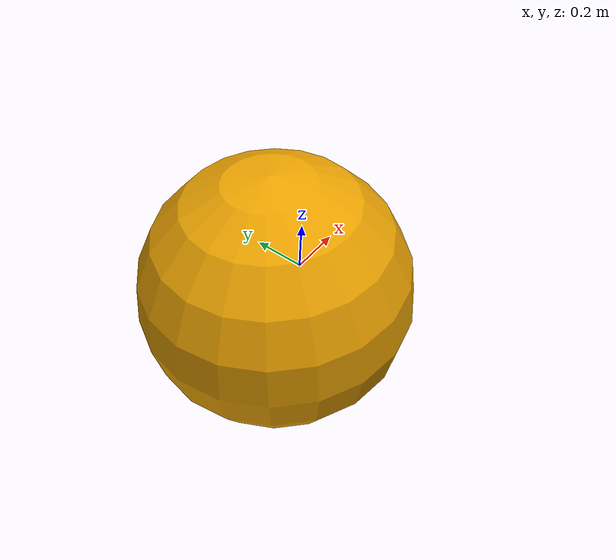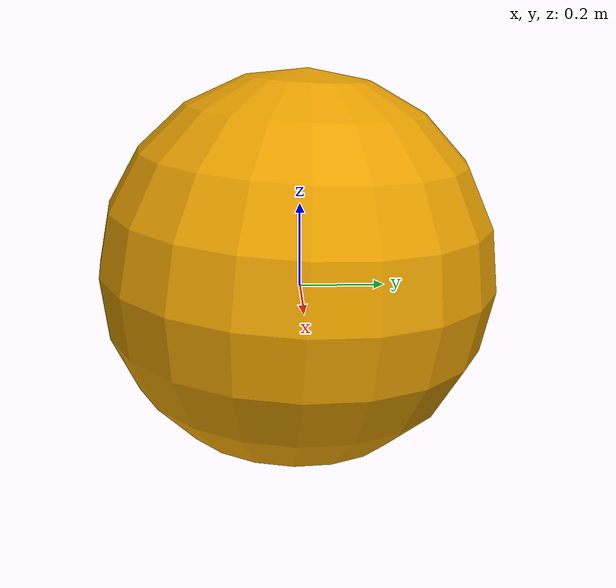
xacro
<?xml version="1.0"?>
<robot xmlns:xacro="http://www.ros.org/wiki/xacro" name="rover">

<xacro:arg name="params_path" default=""/>
<xacro:property name="params_path" value="$(arg params_path)"/>

<xacro:property name="param" value="${xacro.load_yaml(params_path)}"/>
<link name='base_link'>
            <origin xyz="0 0 0.1" rpy="0 0 0"/>

            <collision name='collision'>
            <origin xyz="0 0 0.1" rpy="0 0 0"/>
              <geometry>
                <box size="0.4 0.2 0.1"/>
              </geometry>
            </collision>

            <visual name='visual'>
              <geometry>
                 <box size="0.4 0.2 0.1"/>
              </geometry>
            </visual>
                      <collision name='caster_collision'>
            <origin xyz="-0.15 0 0" rpy="-0.05 0 0"/>
            <geometry>
                <sphere radius="0.5"/>

            </geometry>

          </collision>

          <visual name='caster_visual'>
            <origin xyz="-0.15 0 0" rpy="-0.05 0 0"/>
            <geometry>
              <sphere radius="0.5"/>
            </geometry>
          </visual>
          </link>
      <link name="left_wheel">
        <origin xyz="0.1 0.13 0.1" rpy="0 1.5707 1.5707"/>
        <collision name="collision">
        <origin xyz="-0.15 0 0" rpy="-0.05 0 0"/>
          <geometry>
            <cylinder length="0.05" radius="0.1"/>
          </geometry>
        </collision>
        <visual name="visual">
          <geometry>
            <cylinder length="0.05" radius="0.1"/>
          </geometry>
        </visual>
      </link>
      <link name="right_wheel">
        <collision name="collision">
        <origin xyz="0.1 -0.13 0.1" rpy="0 1.5707 1.5707"/>
          <geometry>
           <cylinder length="0.05" radius="0.1"/>
          </geometry>
        </collision>
        <visual name="visual">
          <geometry>
            <cylinder length="0.05" radius="0.1"/>
          </geometry>
        </visual>
      </link>
      <joint name="left_wheel_hinge" type="continuous" >
        <parent link="base_link"/>
        <child link="left_wheel"/>
        <origin xyz="0 0 -0.03" rpy="0 0 0"/>
        <axis xyz="0 1 0"/>
      </joint>

      <joint name="right_wheel_hinge" type="continuous" >
        <parent link="base_link"/>
        <child link="right_wheel"/>
        <origin xyz="0 0 0.03" rpy="0 0 0"/>
        <axis xyz="0 1 0"/>
      </joint>

<xacro:include filename="rover_gazebo.xacro" />

</robot>
